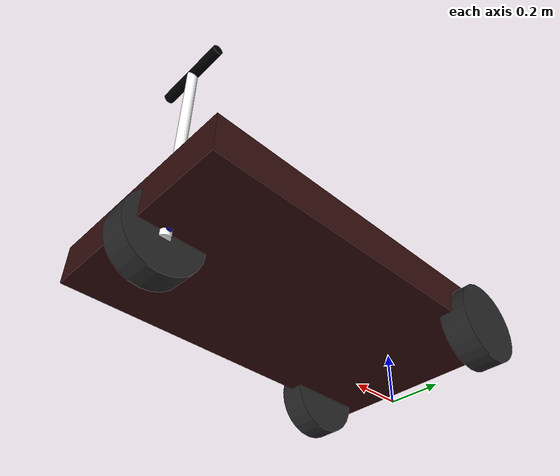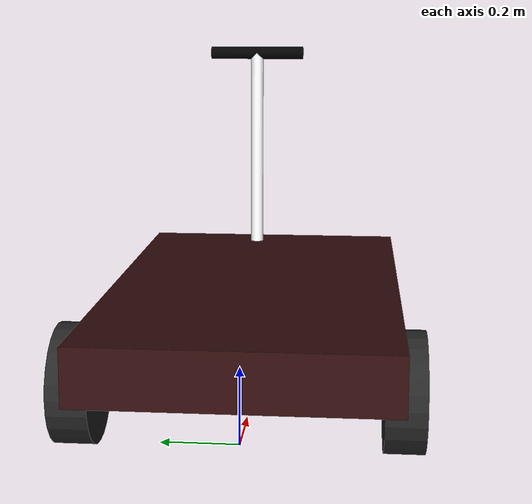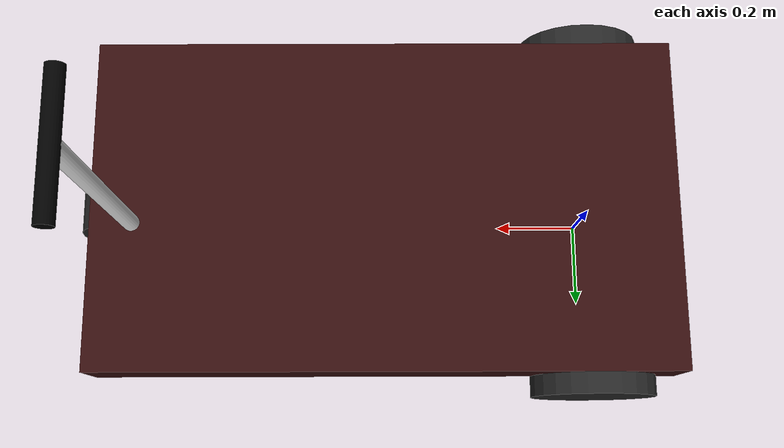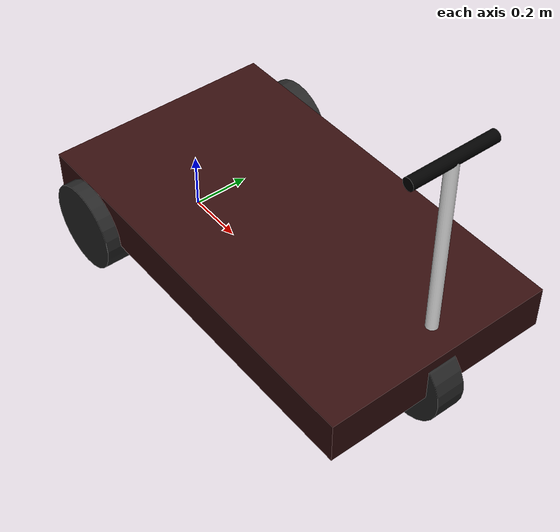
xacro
<?xml version="1.0"?>
<robot name="gebot" xmlns:xacro="http://www.ros.org/wiki/xacro">

    <xacro:property name="base_width" value="0.8"/>
    <xacro:property name="base_length" value="1.4"/>
    <xacro:property name="base_height" value="0.15"/>

    <xacro:property name="wheel_radius" value="0.15"/>
    <xacro:property name="wheel_width" value="0.1"/>
    <xacro:property name="wheel_ygap" value="0.0"/>
    <xacro:property name="wheel_zoff" value="0.075"/>
    <xacro:property name="wheel_xoff" value="0.5"/>

    <!-- Defination of some commonly used intertial properties  -->
    <xacro:macro name="box_inertia" params="m w h d">
        <inertial>
            <origin xyz="0 0 0" rpy="${pi/2} 0 ${pi/2}"/>
            <mass value="${m}"/>
            <inertia ixx="${(m/12) * (h*h + d*d)}" ixy="0.0" ixz="0.0" iyy="${(m/12) * (w*w + d*d)}" iyz="0.0" izz="${(m/12) * (w*w + h*h)}"/>
        </inertial>
    </xacro:macro>

    <xacro:macro name="cylinder_inertia" params="m r h">
        <inertial>
            <origin xyz="0 0 0" rpy="${pi/2} 0 0" />
            <mass value="${m}"/>
            <inertia ixx="${(m/12) * (3*r*r + h*h)}" ixy = "0" ixz = "0" iyy="${(m/12) * (3*r*r + h*h)}" iyz = "0" izz="${(m/2) * (r*r)}"/>
        </inertial>
    </xacro:macro>

    <!-- Material -->
    <material name="black">
        <color rgba="0.0 0.0 0.0 1.0"/>
    </material>
    <material name="white">
        <color rgba="1.0 1.0 1.0 1.0"/>
    </material>
    <material name="wheel">
        <color rgba="0.15 0.15 0.15 1.0"/>
    </material>
    <material name="myblue">
        <color rgba="0.0 0.0 0.5 1.0"/>
    </material>
    <material name="base">
        <color rgba="0.2 0.05 0.05 1.0"/>
    </material>
    <material name="lidar">
        <color rgba="0.8 0.0 0.0 1.0"/>
    </material>

    <!-- Robot Base -->
    <link name="base_link"/>

    <!-- Base_footprint -->

    <!-- Chassis -->
    <link name="base_chassis">
        <collision>
            <origin xyz="0.0 0.0 0.0" rpy="0.0 0.0 0.0"/>
            <geometry>
                <box size="${base_length} ${base_width} ${base_height}"/>
            </geometry>
        </collision>
        <visual>
            <origin xyz="0.0 0.0 0.0" rpy="0.0 0.0 0.0"/>
            <geometry>
                <box size="${base_length} ${base_width} ${base_height}"/>
            </geometry>
            <material name="base"/>
        </visual>

        <xacro:box_inertia m="3" w="${base_width}" d="${base_length}" h="${base_height}"/>
    </link>

    <joint name="base_link_joint" type="fixed">
        <origin xyz="0.5 0.0 0.225" rpy="0.0 0.0 0.0"/>
        <parent link="base_link"/>
        <child link="base_chassis"/>
    </joint>

    <!-- Wheels -->
    <xacro:macro name="wheel" params="prefix x_reflect y_reflect">
        <link name="${prefix}">
            <collision>
                <!--origin xyz="0 0 0" rpy="${pi/2} 0 0"/-->
                <geometry>
                    <cylinder radius="${wheel_radius}" length="${wheel_width}"/>
                </geometry>
            </collision>
            <visual>
                <!--origin xyz="0 0 0" rpy="${pi/2} 0 0"/-->
                <geometry>
                    <cylinder radius="${wheel_radius}" length="${wheel_width}"/>
                </geometry>
                <material name="wheel"/>
            </visual>

            <xacro:cylinder_inertia m="1" r="${wheel_radius}" h="${wheel_width}"/>
        </link>

        <joint name="${prefix}_joint" type="continuous">
            <origin xyz="${x_reflect*wheel_xoff} ${y_reflect*(base_width/2+wheel_ygap)} ${-wheel_zoff}" rpy="${-pi/2} 0 0"/>
            <parent link="base_chassis"/>
            <child link="${prefix}"/>
            <axis xyz="0 0 1"/>
            <dynamics damping="0.2"/>
        </joint>
    </xacro:macro>

    <xacro:wheel prefix="right_wheel" x_reflect="-1" y_reflect="-1" />
    <xacro:wheel prefix="left_wheel" x_reflect="-1" y_reflect="1" />

    <!-- Front Wheel and Joint-->
    <link name="front_wheel">
        <visual>
            <!--origin xyz="0 0 0" rpy="${pi/2} 0 0"/-->
            <geometry>
                <cylinder radius="${wheel_radius}" length="${wheel_width}"/>
            </geometry>
            <material name="wheel"/>
        </visual>
        <collision>
            <!--origin xyz="0 0 0" rpy="${pi/2} 0 0"/-->
            <geometry>
                <cylinder radius="${wheel_radius}" length="${wheel_width}"/>
            </geometry>
        </collision>
        <xacro:cylinder_inertia m="5" r="${wheel_radius}" h="${wheel_width}"/>
    </link>

    <!-- Steering Links and Joints-->
    <link name="steering_link">
        <visual>
            <origin xyz="0.0 0.0 0.0" rpy="0.0 0.0 0.0"/>
            <geometry>
                <cylinder radius="0.02"  length="0.8"/>
            </geometry>
            <material name="white"/>
        </visual>

        <collision>
            <origin xyz="0.0 0.0 0.0" rpy="0.0 0.0 0.0"/>
            <geometry>
                <cylinder radius="0.02"  length="0.8"/>
            </geometry>
        </collision>

        <xacro:cylinder_inertia m="0.01" r="0.02" h="0.8"/>
    </link>

    <joint name="front_steering_joint" type="revolute">
        <axis xyz="0 0 1"/>
        <limit effort="1000.0" lower="-1.4" upper="1.4" velocity="0.5"/>
        <parent link="base_chassis"/>
        <child link="steering_link"/>
        <origin xyz="0.6 0.05 0.3"/>
    </joint>

    <link name="connection">
        <visual>
            <origin xyz="0.0 0.0 0.0" rpy="${pi/2} 0.0 0.0"/>
            <geometry>
                <cylinder radius="0.01" length="0.05"/>
            </geometry>
            <material name="myblue"/>
        </visual>

        <collision>
            <origin xyz="0.0 0.0 0.0" rpy="${pi/2} 0.0 0.0"/>
            <geometry>
                <cylinder radius="0.01" length="0.05"/>
            </geometry>
        </collision>

        <xacro:cylinder_inertia m="0.001" r="0.01" h="0.05"/>
    </link>

    <joint name="steering_connector"  type="fixed">
        <parent link="steering_link"/>
        <child link="connection"/>
        <origin xyz="0.0 0.0 -0.375"/>
    </joint>

    <link name="steering_wheel">
        <visual>
            <origin xyz="0.0 0.0 0.0" rpy="${pi/2} 0.0 0.0"/>
            <geometry>
                <cylinder radius="0.02" length="0.3"/>
            </geometry>
            <material name="black"/>
        </visual>

        <collision>
            <origin xyz="0.0 0.0 0.0" rpy="${pi/2} 0.0 0.0"/>
            <geometry>
                <cylinder radius="0.02" length="0.3"/>
            </geometry>
        </collision>

        <xacro:cylinder_inertia m="0.005" r="0.02" h="0.3"/>
    </link>

    <joint name="steering_wheel_connector" type="fixed">
        <parent link="steering_link"/>
        <child link="steering_wheel"/>
        <origin xyz="0.0 0.0 0.4"/>
    </joint>

    <joint name="front_wheel_joint" type="continuous">
        <axis xyz="0 0 1" />
        <parent link="connection"/>
        <child link="front_wheel"/>
        <origin xyz="0.0 -0.05 0.0" rpy="${-pi/2} ${pi/2} 0"/>
        <dynamics damping="0.2" />
    </joint>

</robot>
